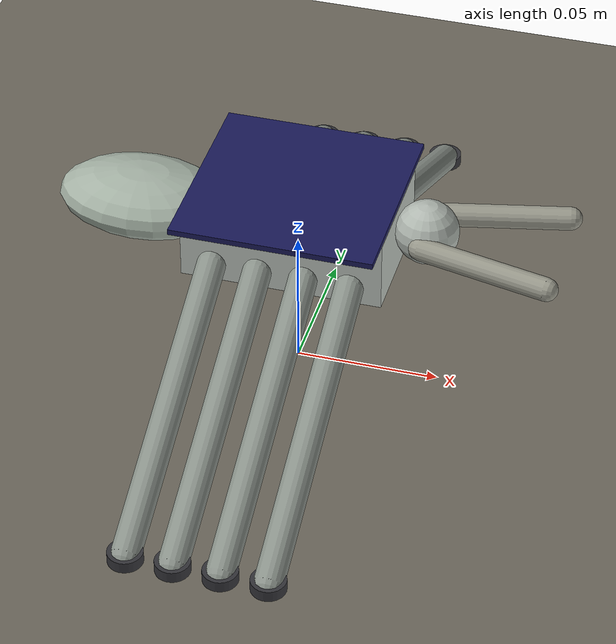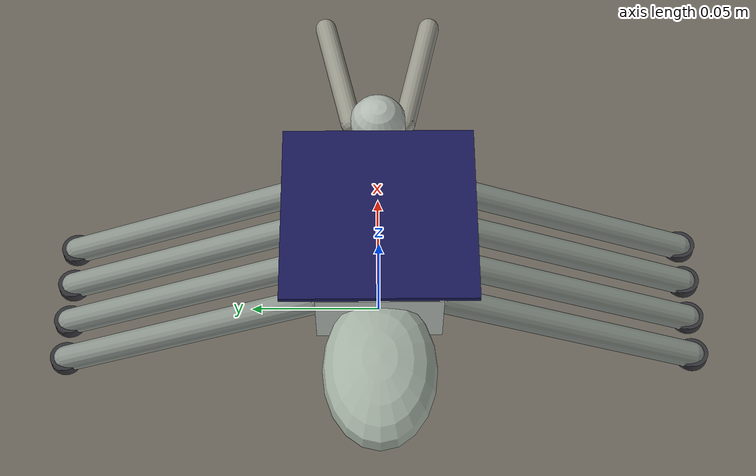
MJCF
<mujoco model="astraant_surface_ant_8leg">

  <compiler angle="degree" coordinate="local"/>
  <option timestep="0.001" gravity="0 0 -9.81">
    <flag contact="enable"/>
  </option>

  <default>
    <joint damping="0.005" armature="0.0001" limited="true"/>
    <geom condim="3" friction="0.8 0.005 0.001" solref="0.02 1"/>
  </default>

  <asset>
    <material name="body_silver" rgba="0.75 0.78 0.75 1"/>
    <material name="abdomen_color" rgba="0.65 0.70 0.65 1"/>
    <material name="head_color" rgba="0.70 0.73 0.70 1"/>
    <material name="solar_panel" rgba="0.10 0.10 0.35 1"/>
    <material name="leg_metal" rgba="0.55 0.58 0.55 1"/>
    <material name="foot_pad_mat" rgba="0.20 0.20 0.22 1"/>
    <material name="mandible_color" rgba="0.60 0.60 0.55 1"/>
    <material name="regolith" rgba="0.42 0.40 0.36 1"/>
  </asset>

  <worldbody>
    <light diffuse="0.9 0.9 0.85" dir="-0.2 -0.3 -1" pos="0.2 0.3 0.5"/>
    <light diffuse="0.3 0.3 0.35" dir="0.5 0.5 -0.3" pos="-0.3 -0.3 0.3"/>

    <geom name="ground" type="plane" size="1 1 0.01"
          material="regolith" friction="0.5 0.01 0.001"/>

    <body name="torso" pos="0 0 0.058">
      <freejoint name="root"/>
      <camera name="track" pos="0 -0.4 0.2" xyaxes="1 0 0 0 0.5 1" mode="track"/>

      <!-- Thorax: 70x45x25mm aluminum (lighter to fit 8 legs in mass budget) -->
      <geom name="thorax" type="box" size="0.035 0.0225 0.0125"
            mass="0.109" material="body_silver"/>

      <!-- Abdomen: 60x40x22mm -->
      <geom name="abdomen" type="ellipsoid" size="0.030 0.020 0.011"
            pos="-0.055 0 0" mass="0.085" material="abdomen_color"/>

      <!-- Head -->
      <geom name="head" type="sphere" size="0.011"
            pos="0.045 0 0.005" mass="0.015" material="head_color"/>

      <!-- Solar panel -->
      <geom name="solar" type="box" size="0.035 0.035 0.001"
            pos="0 0 0.014" mass="0.035" material="solar_panel"/>

      <!-- 8 LEGS: 4 pairs with Maxon vacuum actuators -->
      <!-- Pair 1: front -->
      <body name="leg_0_FL" pos="0.024 0.0225 -0.006">
        <joint name="j_leg_0" type="hinge" axis="0 -1 0" range="-30 30"/>
        <geom name="leg_0" type="capsule" fromto="0 0 0  0 0.0975 -0.046"
              size="0.005" mass="0.010" material="leg_metal"/>
        <body name="foot_0" pos="0 0.0975 -0.046">
          <geom name="foot_0_pad" type="cylinder" size="0.006 0.002"
                mass="0.003" material="foot_pad_mat"
                friction="5.0 0.02 0.005" condim="6" solref="0.01 1"/>
        </body>
      </body>
      <body name="leg_1_FR" pos="0.024 -0.0225 -0.006">
        <joint name="j_leg_1" type="hinge" axis="0 -1 0" range="-30 30"/>
        <geom name="leg_1" type="capsule" fromto="0 0 0  0 -0.0975 -0.046"
              size="0.005" mass="0.010" material="leg_metal"/>
        <body name="foot_1" pos="0 -0.0975 -0.046">
          <geom name="foot_1_pad" type="cylinder" size="0.006 0.002"
                mass="0.003" material="foot_pad_mat"
                friction="5.0 0.02 0.005" condim="6" solref="0.01 1"/>
        </body>
      </body>

      <!-- Pair 2 -->
      <body name="leg_2_M1L" pos="0.008 0.0225 -0.006">
        <joint name="j_leg_2" type="hinge" axis="0 -1 0" range="-30 30"/>
        <geom name="leg_2" type="capsule" fromto="0 0 0  0 0.0975 -0.046"
              size="0.005" mass="0.010" material="leg_metal"/>
        <body name="foot_2" pos="0 0.0975 -0.046">
          <geom name="foot_2_pad" type="cylinder" size="0.006 0.002"
                mass="0.003" material="foot_pad_mat"
                friction="5.0 0.02 0.005" condim="6" solref="0.01 1"/>
        </body>
      </body>
      <body name="leg_3_M1R" pos="0.008 -0.0225 -0.006">
        <joint name="j_leg_3" type="hinge" axis="0 -1 0" range="-30 30"/>
        <geom name="leg_3" type="capsule" fromto="0 0 0  0 -0.0975 -0.046"
              size="0.005" mass="0.010" material="leg_metal"/>
        <body name="foot_3" pos="0 -0.0975 -0.046">
          <geom name="foot_3_pad" type="cylinder" size="0.006 0.002"
                mass="0.003" material="foot_pad_mat"
                friction="5.0 0.02 0.005" condim="6" solref="0.01 1"/>
        </body>
      </body>

      <!-- Pair 3 -->
      <body name="leg_4_M2L" pos="-0.008 0.0225 -0.006">
        <joint name="j_leg_4" type="hinge" axis="0 -1 0" range="-30 30"/>
        <geom name="leg_4" type="capsule" fromto="0 0 0  0 0.0975 -0.046"
              size="0.005" mass="0.010" material="leg_metal"/>
        <body name="foot_4" pos="0 0.0975 -0.046">
          <geom name="foot_4_pad" type="cylinder" size="0.006 0.002"
                mass="0.003" material="foot_pad_mat"
                friction="5.0 0.02 0.005" condim="6" solref="0.01 1"/>
        </body>
      </body>
      <body name="leg_5_M2R" pos="-0.008 -0.0225 -0.006">
        <joint name="j_leg_5" type="hinge" axis="0 -1 0" range="-30 30"/>
        <geom name="leg_5" type="capsule" fromto="0 0 0  0 -0.0975 -0.046"
              size="0.005" mass="0.010" material="leg_metal"/>
        <body name="foot_5" pos="0 -0.0975 -0.046">
          <geom name="foot_5_pad" type="cylinder" size="0.006 0.002"
                mass="0.003" material="foot_pad_mat"
                friction="5.0 0.02 0.005" condim="6" solref="0.01 1"/>
        </body>
      </body>

      <!-- Pair 4: rear -->
      <body name="leg_6_RL" pos="-0.024 0.0225 -0.006">
        <joint name="j_leg_6" type="hinge" axis="0 -1 0" range="-30 30"/>
        <geom name="leg_6" type="capsule" fromto="0 0 0  0 0.0975 -0.046"
              size="0.005" mass="0.010" material="leg_metal"/>
        <body name="foot_6" pos="0 0.0975 -0.046">
          <geom name="foot_6_pad" type="cylinder" size="0.006 0.002"
                mass="0.003" material="foot_pad_mat"
                friction="5.0 0.02 0.005" condim="6" solref="0.01 1"/>
        </body>
      </body>
      <body name="leg_7_RR" pos="-0.024 -0.0225 -0.006">
        <joint name="j_leg_7" type="hinge" axis="0 -1 0" range="-30 30"/>
        <geom name="leg_7" type="capsule" fromto="0 0 0  0 -0.0975 -0.046"
              size="0.005" mass="0.010" material="leg_metal"/>
        <body name="foot_7" pos="0 -0.0975 -0.046">
          <geom name="foot_7_pad" type="cylinder" size="0.006 0.002"
                mass="0.003" material="foot_pad_mat"
                friction="5.0 0.02 0.005" condim="6" solref="0.01 1"/>
        </body>
      </body>

      <!-- Mandibles -->
      <body name="mandible_L" pos="0.045 0.010 0.005">
        <joint name="j_mandible_L" type="hinge" axis="0 0 1" range="-30 30"/>
        <geom name="mandible_L_arm" type="capsule" fromto="0 0 0  0.045 0.010 0"
              size="0.004" mass="0.012" material="mandible_color"/>
      </body>
      <body name="mandible_R" pos="0.045 -0.010 0.005">
        <joint name="j_mandible_R" type="hinge" axis="0 0 -1" range="-30 30"/>
        <geom name="mandible_R_arm" type="capsule" fromto="0 0 0  0.045 -0.010 0"
              size="0.004" mass="0.012" material="mandible_color"/>
      </body>
    </body>
  </worldbody>

  <actuator>
    <!-- Maxon vacuum-rated: ~1.0 N*m stall torque -->
    <position name="servo_leg_0" joint="j_leg_0" kp="20.0" kv="0.05" ctrlrange="-30 30" forcerange="-1.0 1.0"/>
    <position name="servo_leg_1" joint="j_leg_1" kp="20.0" kv="0.05" ctrlrange="-30 30" forcerange="-1.0 1.0"/>
    <position name="servo_leg_2" joint="j_leg_2" kp="20.0" kv="0.05" ctrlrange="-30 30" forcerange="-1.0 1.0"/>
    <position name="servo_leg_3" joint="j_leg_3" kp="20.0" kv="0.05" ctrlrange="-30 30" forcerange="-1.0 1.0"/>
    <position name="servo_leg_4" joint="j_leg_4" kp="20.0" kv="0.05" ctrlrange="-30 30" forcerange="-1.0 1.0"/>
    <position name="servo_leg_5" joint="j_leg_5" kp="20.0" kv="0.05" ctrlrange="-30 30" forcerange="-1.0 1.0"/>
    <position name="servo_leg_6" joint="j_leg_6" kp="20.0" kv="0.05" ctrlrange="-30 30" forcerange="-1.0 1.0"/>
    <position name="servo_leg_7" joint="j_leg_7" kp="20.0" kv="0.05" ctrlrange="-30 30" forcerange="-1.0 1.0"/>
    <position name="servo_mandible_L" joint="j_mandible_L" kp="10.0" kv="0.03" ctrlrange="-30 30" forcerange="-0.5 0.5"/>
    <position name="servo_mandible_R" joint="j_mandible_R" kp="10.0" kv="0.03" ctrlrange="-30 30" forcerange="-0.5 0.5"/>
  </actuator>

  <sensor>
    <framepos name="torso_pos" objtype="body" objname="torso"/>
    <framequat name="torso_quat" objtype="body" objname="torso"/>
    <framelinvel name="torso_linvel" objtype="body" objname="torso"/>
  </sensor>

</mujoco>
